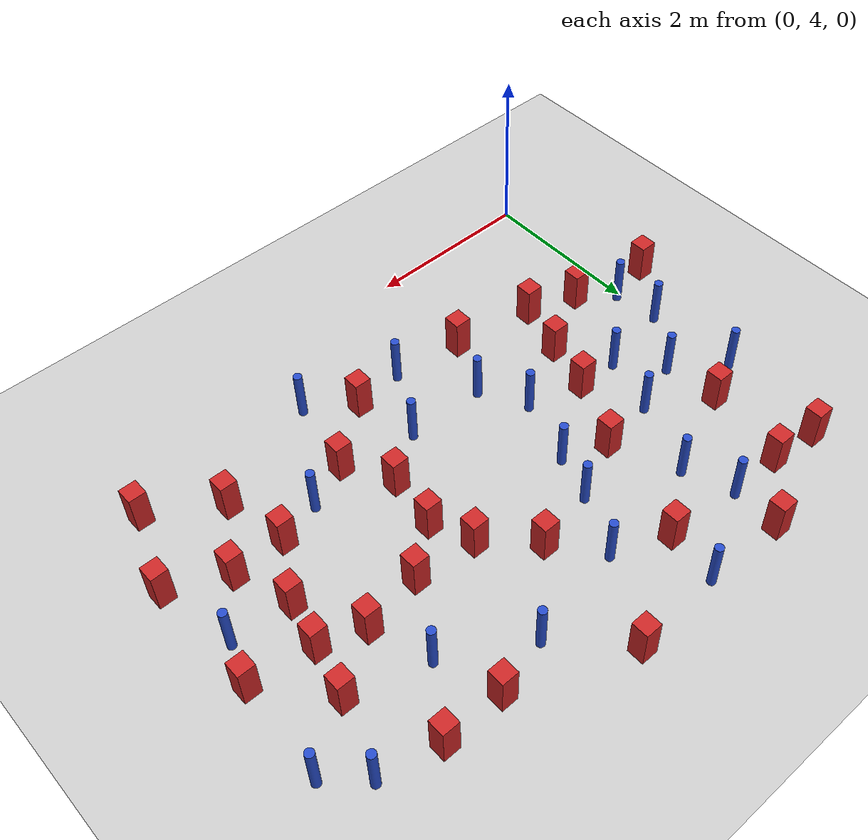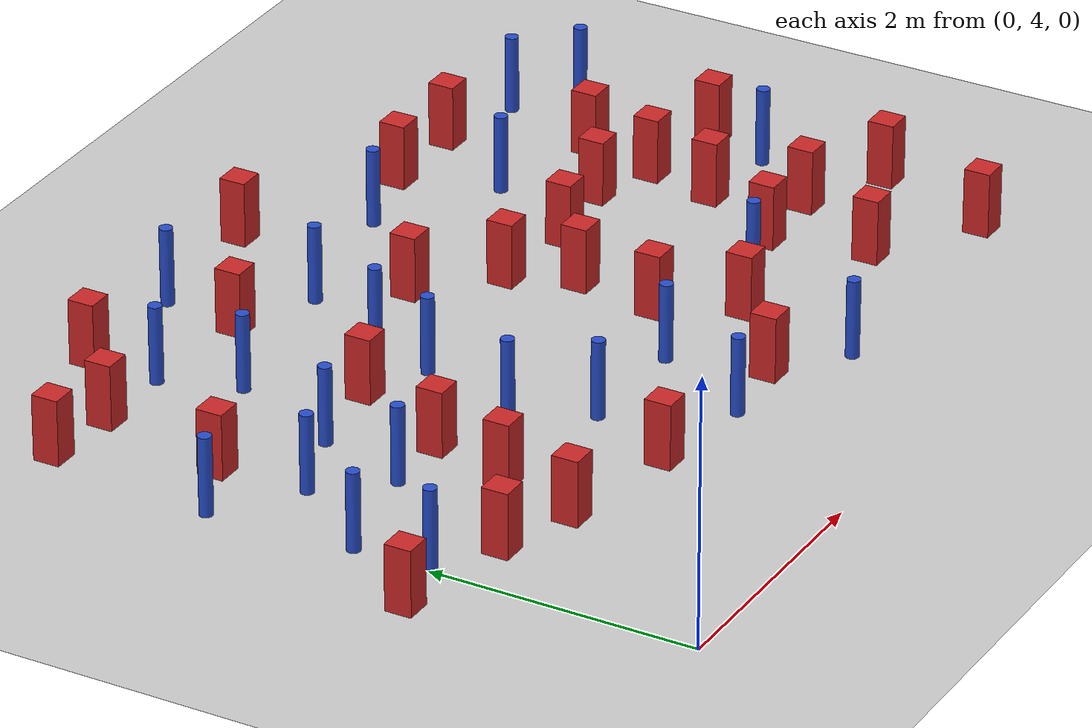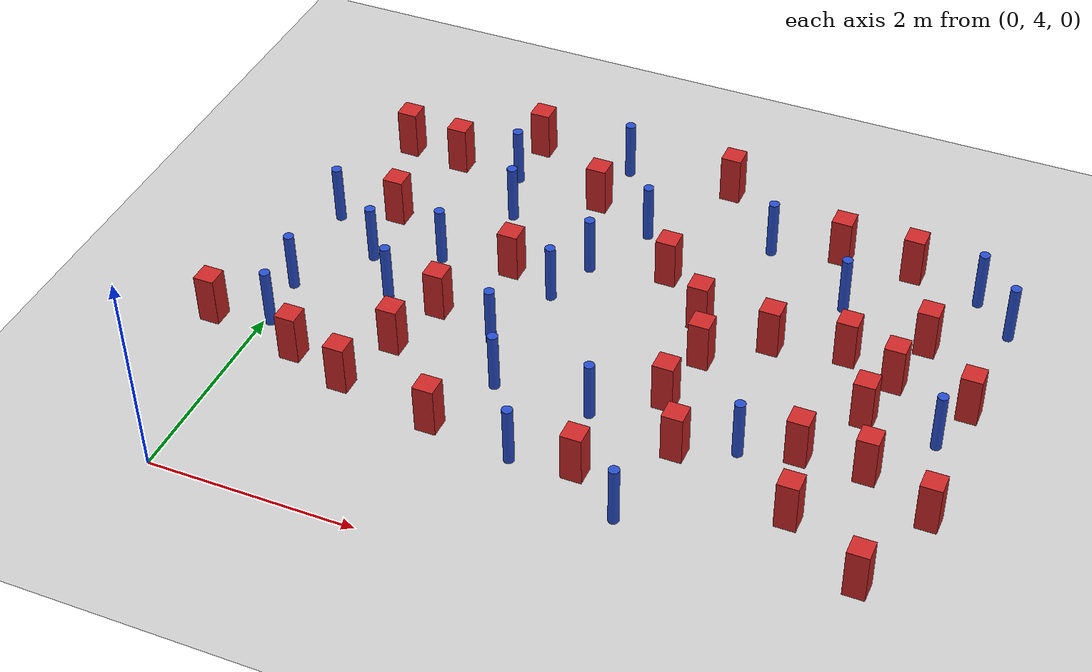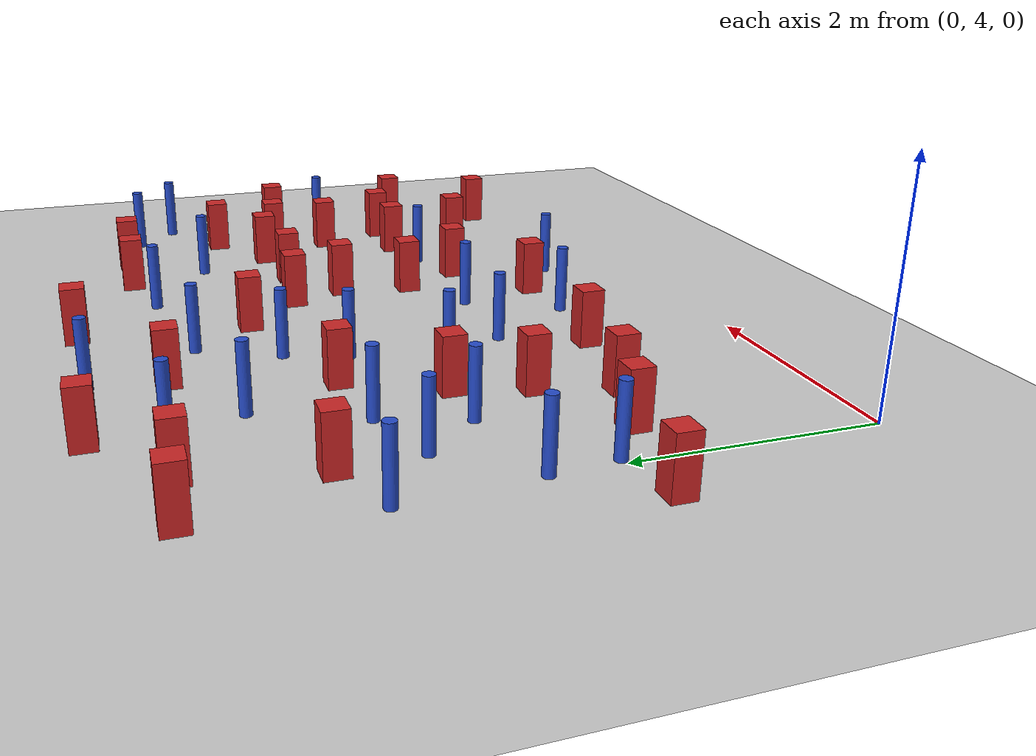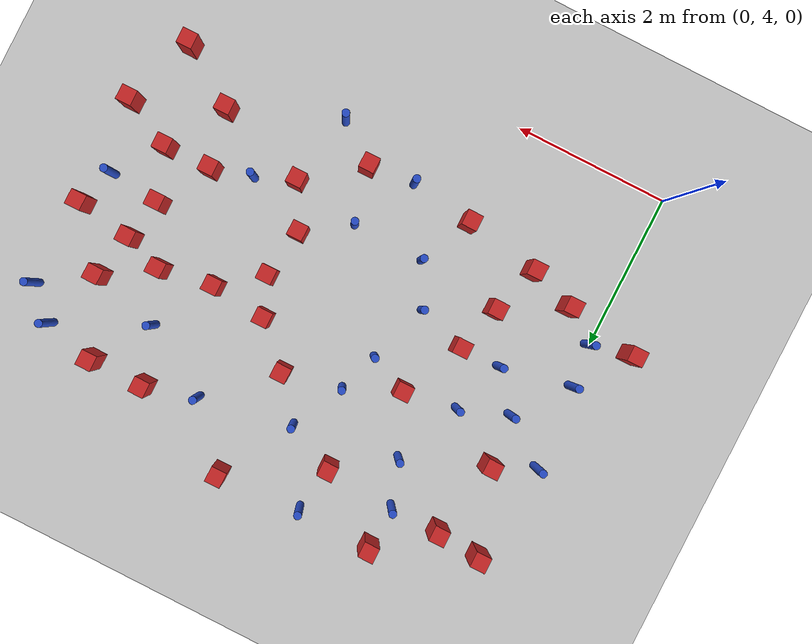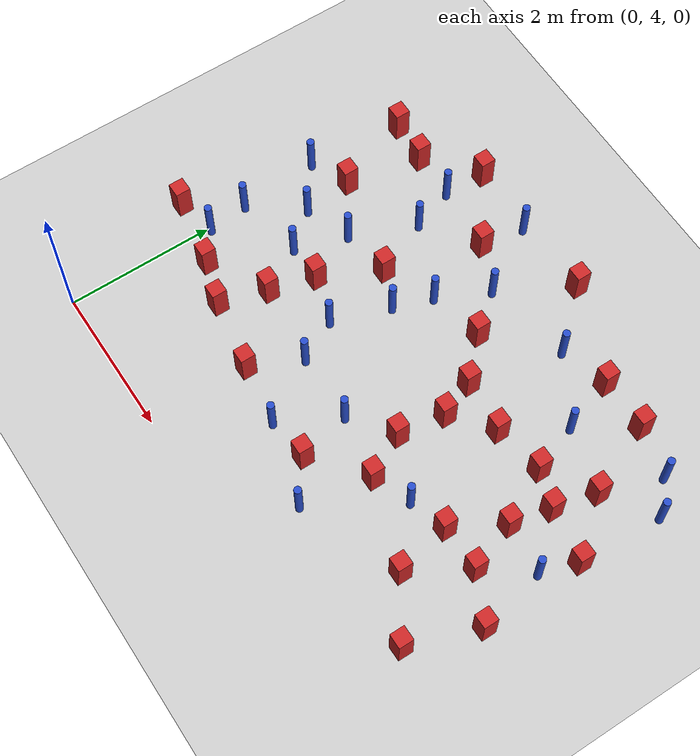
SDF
<sdf version="1.6">
 <world name="default">
  <model name="ground_plane">
   <static>1</static>
   <link name="link">
    <collision name="collision">
     <geometry><plane><normal>0 0 1</normal><size>100 100</size></plane></geometry>
     <surface><friction><ode><mu>100</mu><mu2>50</mu2></ode></friction></surface>
    </collision>
    <visual name="visual">
     <cast_shadows>0</cast_shadows>
     <geometry><plane><normal>0 0 1</normal><size>100 100</size></plane></geometry>
     <material>
      <ambient>1.0 1.0 1.0 1.0</ambient>
      <diffuse>0.8 0.8 0.8 1.0</diffuse>
      <specular>0.01 0.01 0.01 1.000000</specular>
     </material>
    </visual>
   </link>
  </model>
  <model name="pole_obstacle1">
   <static>true</static>
   <pose>2.85580955907 5.23067416467 -9.47619616065e-06 5.49618799738e-07 2.3631041406e-07 -1.55090534801e-07</pose>
   <link name="link">
    <pose>0 0 0.3 0 -0 0</pose>
    <inertial>
     <mass>1</mass>
     <inertia><ixx>0.145833</ixx><ixy>0</ixy><ixz>0</ixz><iyy>0.145833</iyy><iyz>0</iyz><izz>0.125</izz></inertia>
    </inertial>
    <collision name="collision">
     <geometry><cylinder><radius>0.05</radius><length>.6</length></cylinder></geometry>
    </collision>
    <visual name="visual">
     <geometry><cylinder><radius>0.05</radius><length>.6</length></cylinder></geometry>
     <material>
      <script><name>Gazebo/Blue</name><uri>file://media/materials/scripts/gazebo.material</uri></script>
     </material>
    </visual>
   </link>
  </model>
  <model name="square_post_obstacle0">
   <static>true</static>
   <pose>1.83028905246 7.55747029664 -6.11067671241e-07 -5.50515727128e-06 -8.79689657224e-07 2.37013304536e-05</pose>
   <link name="link">
    <pose>0 0 0.25 0 -0 0</pose>
    <inertial>
     <mass>100</mass>
     <inertia>
      <ixx>0.166667</ixx>
      <ixy>0</ixy>
      <ixz>0</ixz>
      <iyy>0.166667</iyy>
      <iyz>0</iyz>
      <izz>0.166667</izz>
     </inertia>
    </inertial>
    <collision name="collision"><geometry><box><size>.2 .2 .5</size></box></geometry></collision>
    <visual name="visual">
     <geometry><box><size>.2 .2 .5</size></box></geometry>
     <material>
      <script><name>Gazebo/Red</name><uri>file://media/materials/scripts/gazebo.material</uri></script>
     </material>
    </visual>
   </link>
  </model>
  <model name="square_post_obstacle8">
   <static>true</static>
   <pose>3.74884087487 7.5368950362 -6.11067671241e-07 -5.50515727128e-06 -8.79689657224e-07 2.37013304536e-05</pose>
   <link name="link">
    <pose>0 0 0.25 0 -0 0</pose>
    <inertial>
     <mass>100</mass>
     <inertia>
      <ixx>0.166667</ixx>
      <ixy>0</ixy>
      <ixz>0</ixz>
      <iyy>0.166667</iyy>
      <iyz>0</iyz>
      <izz>0.166667</izz>
     </inertia>
    </inertial>
    <collision name="collision"><geometry><box><size>.2 .2 .5</size></box></geometry></collision>
    <visual name="visual">
     <geometry><box><size>.2 .2 .5</size></box></geometry>
     <material>
      <script><name>Gazebo/Red</name><uri>file://media/materials/scripts/gazebo.material</uri></script>
     </material>
    </visual>
   </link>
  </model>
  <model name="square_post_obstacle16">
   <static>true</static>
   <pose>3.84544530139 6.41487011286 -6.11067671241e-07 -5.50515727128e-06 -8.79689657224e-07 2.37013304536e-05</pose>
   <link name="link">
    <pose>0 0 0.25 0 -0 0</pose>
    <inertial>
     <mass>100</mass>
     <inertia>
      <ixx>0.166667</ixx>
      <ixy>0</ixy>
      <ixz>0</ixz>
      <iyy>0.166667</iyy>
      <iyz>0</iyz>
      <izz>0.166667</izz>
     </inertia>
    </inertial>
    <collision name="collision"><geometry><box><size>.2 .2 .5</size></box></geometry></collision>
    <visual name="visual">
     <geometry><box><size>.2 .2 .5</size></box></geometry>
     <material>
      <script><name>Gazebo/Red</name><uri>file://media/materials/scripts/gazebo.material</uri></script>
     </material>
    </visual>
   </link>
  </model>
  <model name="square_post_obstacle22">
   <static>true</static>
   <pose>2.20849700786 8.8190496391 -6.11067671241e-07 -5.50515727128e-06 -8.79689657224e-07 2.37013304536e-05</pose>
   <link name="link">
    <pose>0 0 0.25 0 -0 0</pose>
    <inertial>
     <mass>100</mass>
     <inertia>
      <ixx>0.166667</ixx>
      <ixy>0</ixy>
      <ixz>0</ixz>
      <iyy>0.166667</iyy>
      <iyz>0</iyz>
      <izz>0.166667</izz>
     </inertia>
    </inertial>
    <collision name="collision"><geometry><box><size>.2 .2 .5</size></box></geometry></collision>
    <visual name="visual">
     <geometry><box><size>.2 .2 .5</size></box></geometry>
     <material>
      <script><name>Gazebo/Red</name><uri>file://media/materials/scripts/gazebo.material</uri></script>
     </material>
    </visual>
   </link>
  </model>
  <model name="square_post_obstacle27">
   <static>true</static>
   <pose>3.37162159482 9.488462957 -6.11067671241e-07 -5.50515727128e-06 -8.79689657224e-07 2.37013304536e-05</pose>
   <link name="link">
    <pose>0 0 0.25 0 -0 0</pose>
    <inertial>
     <mass>100</mass>
     <inertia>
      <ixx>0.166667</ixx>
      <ixy>0</ixy>
      <ixz>0</ixz>
      <iyy>0.166667</iyy>
      <iyz>0</iyz>
      <izz>0.166667</izz>
     </inertia>
    </inertial>
    <collision name="collision"><geometry><box><size>.2 .2 .5</size></box></geometry></collision>
    <visual name="visual">
     <geometry><box><size>.2 .2 .5</size></box></geometry>
     <material>
      <script><name>Gazebo/Red</name><uri>file://media/materials/scripts/gazebo.material</uri></script>
     </material>
    </visual>
   </link>
  </model>
  <model name="pole_obstacle45">
   <static>true</static>
   <pose>2.3482059789 6.03119400719 -9.47619616065e-06 5.49618799738e-07 2.3631041406e-07 -1.55090534801e-07</pose>
   <link name="link">
    <pose>0 0 0.3 0 -0 0</pose>
    <inertial>
     <mass>1</mass>
     <inertia><ixx>0.145833</ixx><ixy>0</ixy><ixz>0</ixz><iyy>0.145833</iyy><iyz>0</iyz><izz>0.125</izz></inertia>
    </inertial>
    <collision name="collision">
     <geometry><cylinder><radius>0.05</radius><length>.6</length></cylinder></geometry>
    </collision>
    <visual name="visual">
     <geometry><cylinder><radius>0.05</radius><length>.6</length></cylinder></geometry>
     <material>
      <script><name>Gazebo/Blue</name><uri>file://media/materials/scripts/gazebo.material</uri></script>
     </material>
    </visual>
   </link>
  </model>
  <model name="pole_obstacle52">
   <static>true</static>
   <pose>0.515018091593 7.229874019 -9.47619616065e-06 5.49618799737e-07 2.36310414064e-07 -1.55090534796e-07</pose>
   <link name="link">
    <pose>0 0 0.3 0 -0 0</pose>
    <inertial>
     <mass>1</mass>
     <inertia><ixx>0.145833</ixx><ixy>0</ixy><ixz>0</ixz><iyy>0.145833</iyy><iyz>0</iyz><izz>0.125</izz></inertia>
    </inertial>
    <collision name="collision">
     <geometry><cylinder><radius>0.05</radius><length>.6</length></cylinder></geometry>
    </collision>
    <visual name="visual">
     <geometry><cylinder><radius>0.05</radius><length>.6</length></cylinder></geometry>
     <material>
      <script><name>Gazebo/Blue</name><uri>file://media/materials/scripts/gazebo.material</uri></script>
     </material>
    </visual>
   </link>
  </model>
  <model name="square_post_obstacle43">
   <static>true</static>
   <pose>5.53662683027 6.87199798454 -6.11067671241e-07 -5.50515727128e-06 -8.79689657224e-07 2.37013304536e-05</pose>
   <link name="link">
    <pose>0 0 0.25 0 -0 0</pose>
    <inertial>
     <mass>100</mass>
     <inertia>
      <ixx>0.166667</ixx>
      <ixy>0</ixy>
      <ixz>0</ixz>
      <iyy>0.166667</iyy>
      <iyz>0</iyz>
      <izz>0.166667</izz>
     </inertia>
    </inertial>
    <collision name="collision"><geometry><box><size>.2 .2 .5</size></box></geometry></collision>
    <visual name="visual">
     <geometry><box><size>.2 .2 .5</size></box></geometry>
     <material>
      <script><name>Gazebo/Red</name><uri>file://media/materials/scripts/gazebo.material</uri></script>
     </material>
    </visual>
   </link>
  </model>
  <model name="pole_obstacle57">
   <static>true</static>
   <pose>6.06471203291 8.79837582452 -9.47619616065e-06 5.49618799737e-07 2.36310414065e-07 -1.55090534796e-07</pose>
   <link name="link">
    <pose>0 0 0.3 0 -0 0</pose>
    <inertial>
     <mass>1</mass>
     <inertia><ixx>0.145833</ixx><ixy>0</ixy><ixz>0</ixz><iyy>0.145833</iyy><iyz>0</iyz><izz>0.125</izz></inertia>
    </inertial>
    <collision name="collision">
     <geometry><cylinder><radius>0.05</radius><length>.6</length></cylinder></geometry>
    </collision>
    <visual name="visual">
     <geometry><cylinder><radius>0.05</radius><length>.6</length></cylinder></geometry>
     <material>
      <script><name>Gazebo/Blue</name><uri>file://media/materials/scripts/gazebo.material</uri></script>
     </material>
    </visual>
   </link>
  </model>
  <model name="pole_obstacle58">
   <static>true</static>
   <pose>2.50445414795 7.87052021361 -9.47619616065e-06 5.49618799738e-07 2.3631041406e-07 -1.55090534801e-07</pose>
   <link name="link">
    <pose>0 0 0.3 0 -0 0</pose>
    <inertial>
     <mass>1</mass>
     <inertia><ixx>0.145833</ixx><ixy>0</ixy><ixz>0</ixz><iyy>0.145833</iyy><iyz>0</iyz><izz>0.125</izz></inertia>
    </inertial>
    <collision name="collision">
     <geometry><cylinder><radius>0.05</radius><length>.6</length></cylinder></geometry>
    </collision>
    <visual name="visual">
     <geometry><cylinder><radius>0.05</radius><length>.6</length></cylinder></geometry>
     <material>
      <script><name>Gazebo/Blue</name><uri>file://media/materials/scripts/gazebo.material</uri></script>
     </material>
    </visual>
   </link>
  </model>
  <model name="pole_obstacle65">
   <static>true</static>
   <pose>-0.069797142201 7.66023415834 -9.47619616065e-06 5.49618799738e-07 2.36310414065e-07 -1.55090534798e-07</pose>
   <link name="link">
    <pose>0 0 0.3 0 -0 0</pose>
    <inertial>
     <mass>1</mass>
     <inertia><ixx>0.145833</ixx><ixy>0</ixy><ixz>0</ixz><iyy>0.145833</iyy><iyz>0</iyz><izz>0.125</izz></inertia>
    </inertial>
    <collision name="collision">
     <geometry><cylinder><radius>0.05</radius><length>.6</length></cylinder></geometry>
    </collision>
    <visual name="visual">
     <geometry><cylinder><radius>0.05</radius><length>.6</length></cylinder></geometry>
     <material>
      <script><name>Gazebo/Blue</name><uri>file://media/materials/scripts/gazebo.material</uri></script>
     </material>
    </visual>
   </link>
  </model>
  <model name="pole_obstacle66">
   <static>true</static>
   <pose>4.65085285205 6.06011101592 -9.47619616065e-06 5.49618799737e-07 2.36310414037e-07 -1.55090534814e-07</pose>
   <link name="link">
    <pose>0 0 0.3 0 -0 0</pose>
    <inertial>
     <mass>1</mass>
     <inertia><ixx>0.145833</ixx><ixy>0</ixy><ixz>0</ixz><iyy>0.145833</iyy><iyz>0</iyz><izz>0.125</izz></inertia>
    </inertial>
    <collision name="collision">
     <geometry><cylinder><radius>0.05</radius><length>.6</length></cylinder></geometry>
    </collision>
    <visual name="visual">
     <geometry><cylinder><radius>0.05</radius><length>.6</length></cylinder></geometry>
     <material>
      <script><name>Gazebo/Blue</name><uri>file://media/materials/scripts/gazebo.material</uri></script>
     </material>
    </visual>
   </link>
  </model>
  <model name="square_post_obstacle50">
   <static>true</static>
   <pose>5.38782595455 8.95163446814 -6.11067671241e-07 -5.50515727128e-06 -8.79689657224e-07 2.37013304536e-05</pose>
   <link name="link">
    <pose>0 0 0.25 0 -0 0</pose>
    <inertial>
     <mass>100</mass>
     <inertia>
      <ixx>0.166667</ixx>
      <ixy>0</ixy>
      <ixz>0</ixz>
      <iyy>0.166667</iyy>
      <iyz>0</iyz>
      <izz>0.166667</izz>
     </inertia>
    </inertial>
    <collision name="collision"><geometry><box><size>.2 .2 .5</size></box></geometry></collision>
    <visual name="visual">
     <geometry><box><size>.2 .2 .5</size></box></geometry>
     <material>
      <script><name>Gazebo/Red</name><uri>file://media/materials/scripts/gazebo.material</uri></script>
     </material>
    </visual>
   </link>
  </model>
  <model name="square_post_obstacle51">
   <static>true</static>
   <pose>0.475971260374 5.71916695548 -6.11067671241e-07 -5.50515727128e-06 -8.79689657224e-07 2.37013304536e-05</pose>
   <link name="link">
    <pose>0 0 0.25 0 -0 0</pose>
    <inertial>
     <mass>100</mass>
     <inertia>
      <ixx>0.166667</ixx>
      <ixy>0</ixy>
      <ixz>0</ixz>
      <iyy>0.166667</iyy>
      <iyz>0</iyz>
      <izz>0.166667</izz>
     </inertia>
    </inertial>
    <collision name="collision"><geometry><box><size>.2 .2 .5</size></box></geometry></collision>
    <visual name="visual">
     <geometry><box><size>.2 .2 .5</size></box></geometry>
     <material>
      <script><name>Gazebo/Red</name><uri>file://media/materials/scripts/gazebo.material</uri></script>
     </material>
    </visual>
   </link>
  </model>
  <model name="square_post_obstacle57">
   <static>true</static>
   <pose>1.270073538 6.15981220627 -6.11067671241e-07 -5.50515727128e-06 -8.79689657224e-07 2.37013304536e-05</pose>
   <link name="link">
    <pose>0 0 0.25 0 -0 0</pose>
    <inertial>
     <mass>100</mass>
     <inertia>
      <ixx>0.166667</ixx>
      <ixy>0</ixy>
      <ixz>0</ixz>
      <iyy>0.166667</iyy>
      <iyz>0</iyz>
      <izz>0.166667</izz>
     </inertia>
    </inertial>
    <collision name="collision"><geometry><box><size>.2 .2 .5</size></box></geometry></collision>
    <visual name="visual">
     <geometry><box><size>.2 .2 .5</size></box></geometry>
     <material>
      <script><name>Gazebo/Red</name><uri>file://media/materials/scripts/gazebo.material</uri></script>
     </material>
    </visual>
   </link>
  </model>
  <model name="pole_obstacle70">
   <static>true</static>
   <pose>2.83326348503 8.54888069848 -9.4761961606e-06 5.49618799729e-07 2.36310414e-07 -1.55090534824e-07</pose>
   <link name="link">
    <pose>0 0 0.3 0 -0 0</pose>
    <inertial>
     <mass>1</mass>
     <inertia><ixx>0.145833</ixx><ixy>0</ixy><ixz>0</ixz><iyy>0.145833</iyy><iyz>0</iyz><izz>0.125</izz></inertia>
    </inertial>
    <collision name="collision">
     <geometry><cylinder><radius>0.05</radius><length>.6</length></cylinder></geometry>
    </collision>
    <visual name="visual">
     <geometry><cylinder><radius>0.05</radius><length>.6</length></cylinder></geometry>
     <material>
      <script><name>Gazebo/Blue</name><uri>file://media/materials/scripts/gazebo.material</uri></script>
     </material>
    </visual>
   </link>
  </model>
  <model name="pole_obstacle72">
   <static>true</static>
   <pose>1.29949552633 8.89652993735 -9.47619616065e-06 5.49618799737e-07 2.36310414046e-07 -1.55090534809e-07</pose>
   <link name="link">
    <pose>0 0 0.3 0 -0 0</pose>
    <inertial>
     <mass>1</mass>
     <inertia><ixx>0.145833</ixx><ixy>0</ixy><ixz>0</ixz><iyy>0.145833</iyy><iyz>0</iyz><izz>0.125</izz></inertia>
    </inertial>
    <collision name="collision">
     <geometry><cylinder><radius>0.05</radius><length>.6</length></cylinder></geometry>
    </collision>
    <visual name="visual">
     <geometry><cylinder><radius>0.05</radius><length>.6</length></cylinder></geometry>
     <material>
      <script><name>Gazebo/Blue</name><uri>file://media/materials/scripts/gazebo.material</uri></script>
     </material>
    </visual>
   </link>
  </model>
  <model name="pole_obstacle91">
   <static>true</static>
   <pose>4.02550675556 8.77714383015 -9.47619616065e-06 5.49618799737e-07 2.36310414062e-07 -1.55090534799e-07</pose>
   <link name="link">
    <pose>0 0 0.3 0 -0 0</pose>
    <inertial>
     <mass>1</mass>
     <inertia><ixx>0.145833</ixx><ixy>0</ixy><ixz>0</ixz><iyy>0.145833</iyy><iyz>0</iyz><izz>0.125</izz></inertia>
    </inertial>
    <collision name="collision">
     <geometry><cylinder><radius>0.05</radius><length>.6</length></cylinder></geometry>
    </collision>
    <visual name="visual">
     <geometry><cylinder><radius>0.05</radius><length>.6</length></cylinder></geometry>
     <material>
      <script><name>Gazebo/Blue</name><uri>file://media/materials/scripts/gazebo.material</uri></script>
     </material>
    </visual>
   </link>
  </model>
  <model name="pole_obstacle92">
   <static>true</static>
   <pose>1.13587199653 7.45641889118 -9.47619616065e-06 5.49618799737e-07 2.36310414061e-07 -1.550905348e-07</pose>
   <link name="link">
    <pose>0 0 0.3 0 -0 0</pose>
    <inertial>
     <mass>1</mass>
     <inertia><ixx>0.145833</ixx><ixy>0</ixy><ixz>0</ixz><iyy>0.145833</iyy><iyz>0</iyz><izz>0.125</izz></inertia>
    </inertial>
    <collision name="collision">
     <geometry><cylinder><radius>0.05</radius><length>.6</length></cylinder></geometry>
    </collision>
    <visual name="visual">
     <geometry><cylinder><radius>0.05</radius><length>.6</length></cylinder></geometry>
     <material>
      <script><name>Gazebo/Blue</name><uri>file://media/materials/scripts/gazebo.material</uri></script>
     </material>
    </visual>
   </link>
  </model>
  <model name="square_post_obstacle86">
   <static>true</static>
   <pose>0.662292389797 8.89794215684 -6.11067671241e-07 -5.50515727128e-06 -8.79689657224e-07 2.37013304536e-05</pose>
   <link name="link">
    <pose>0 0 0.25 0 -0 0</pose>
    <inertial>
     <mass>100</mass>
     <inertia>
      <ixx>0.166667</ixx>
      <ixy>0</ixy>
      <ixz>0</ixz>
      <iyy>0.166667</iyy>
      <iyz>0</iyz>
      <izz>0.166667</izz>
     </inertia>
    </inertial>
    <collision name="collision"><geometry><box><size>.2 .2 .5</size></box></geometry></collision>
    <visual name="visual">
     <geometry><box><size>.2 .2 .5</size></box></geometry>
     <material>
      <script><name>Gazebo/Red</name><uri>file://media/materials/scripts/gazebo.material</uri></script>
     </material>
    </visual>
   </link>
  </model>
  <model name="pole_obstacle95">
   <static>true</static>
   <pose>0.912615577414 6.76168383278 -9.47619616065e-06 5.49618799737e-07 2.36310414065e-07 -1.55090534796e-07</pose>
   <link name="link">
    <pose>0 0 0.3 0 -0 0</pose>
    <inertial>
     <mass>1</mass>
     <inertia><ixx>0.145833</ixx><ixy>0</ixy><ixz>0</ixz><iyy>0.145833</iyy><iyz>0</iyz><izz>0.125</izz></inertia>
    </inertial>
    <collision name="collision">
     <geometry><cylinder><radius>0.05</radius><length>.6</length></cylinder></geometry>
    </collision>
    <visual name="visual">
     <geometry><cylinder><radius>0.05</radius><length>.6</length></cylinder></geometry>
     <material>
      <script><name>Gazebo/Blue</name><uri>file://media/materials/scripts/gazebo.material</uri></script>
     </material>
    </visual>
   </link>
  </model>
  <model name="square_post_obstacle95">
   <static>true</static>
   <pose>0.0823641384119 8.95176169801 -6.11067671241e-07 -5.50515727128e-06 -8.79689657224e-07 2.37013304536e-05</pose>
   <link name="link">
    <pose>0 0 0.25 0 -0 0</pose>
    <inertial>
     <mass>100</mass>
     <inertia>
      <ixx>0.166667</ixx>
      <ixy>0</ixy>
      <ixz>0</ixz>
      <iyy>0.166667</iyy>
      <iyz>0</iyz>
      <izz>0.166667</izz>
     </inertia>
    </inertial>
    <collision name="collision"><geometry><box><size>.2 .2 .5</size></box></geometry></collision>
    <visual name="visual">
     <geometry><box><size>.2 .2 .5</size></box></geometry>
     <material>
      <script><name>Gazebo/Red</name><uri>file://media/materials/scripts/gazebo.material</uri></script>
     </material>
    </visual>
   </link>
  </model>
  <model name="pole_obstacle103">
   <static>true</static>
   <pose>0.00601956938306 6.57209851133 -9.47619616065e-06 5.49618799737e-07 2.36310414062e-07 -1.550905348e-07</pose>
   <link name="link">
    <pose>0 0 0.3 0 -0 0</pose>
    <inertial>
     <mass>1</mass>
     <inertia><ixx>0.145833</ixx><ixy>0</ixy><ixz>0</ixz><iyy>0.145833</iyy><iyz>0</iyz><izz>0.125</izz></inertia>
    </inertial>
    <collision name="collision">
     <geometry><cylinder><radius>0.05</radius><length>.6</length></cylinder></geometry>
    </collision>
    <visual name="visual">
     <geometry><cylinder><radius>0.05</radius><length>.6</length></cylinder></geometry>
     <material>
      <script><name>Gazebo/Blue</name><uri>file://media/materials/scripts/gazebo.material</uri></script>
     </material>
    </visual>
   </link>
  </model>
  <model name="pole_obstacle105">
   <static>true</static>
   <pose>3.27946936242 6.01267195641 -9.47619616065e-06 5.49618799738e-07 2.3631041406e-07 -1.55090534801e-07</pose>
   <link name="link">
    <pose>0 0 0.3 0 -0 0</pose>
    <inertial>
     <mass>1</mass>
     <inertia><ixx>0.145833</ixx><ixy>0</ixy><ixz>0</ixz><iyy>0.145833</iyy><iyz>0</iyz><izz>0.125</izz></inertia>
    </inertial>
    <collision name="collision">
     <geometry><cylinder><radius>0.05</radius><length>.6</length></cylinder></geometry>
    </collision>
    <visual name="visual">
     <geometry><cylinder><radius>0.05</radius><length>.6</length></cylinder></geometry>
     <material>
      <script><name>Gazebo/Blue</name><uri>file://media/materials/scripts/gazebo.material</uri></script>
     </material>
    </visual>
   </link>
  </model>
  <model name="pole_obstacle106">
   <static>true</static>
   <pose>0.0633143659111 6.02285485583 -9.47619616065e-06 5.49618799737e-07 2.36310414061e-07 -1.550905348e-07</pose>
   <link name="link">
    <pose>0 0 0.3 0 -0 0</pose>
    <inertial>
     <mass>1</mass>
     <inertia><ixx>0.145833</ixx><ixy>0</ixy><ixz>0</ixz><iyy>0.145833</iyy><iyz>0</iyz><izz>0.125</izz></inertia>
    </inertial>
    <collision name="collision">
     <geometry><cylinder><radius>0.05</radius><length>.6</length></cylinder></geometry>
    </collision>
    <visual name="visual">
     <geometry><cylinder><radius>0.05</radius><length>.6</length></cylinder></geometry>
     <material>
      <script><name>Gazebo/Blue</name><uri>file://media/materials/scripts/gazebo.material</uri></script>
     </material>
    </visual>
   </link>
  </model>
  <model name="pole_obstacle107">
   <static>true</static>
   <pose>6.21603808845 6.8076604136 -9.47619616065e-06 5.49618799737e-07 2.36310414037e-07 -1.55090534814e-07</pose>
   <link name="link">
    <pose>0 0 0.3 0 -0 0</pose>
    <inertial>
     <mass>1</mass>
     <inertia><ixx>0.145833</ixx><ixy>0</ixy><ixz>0</ixz><iyy>0.145833</iyy><iyz>0</iyz><izz>0.125</izz></inertia>
    </inertial>
    <collision name="collision">
     <geometry><cylinder><radius>0.05</radius><length>.6</length></cylinder></geometry>
    </collision>
    <visual name="visual">
     <geometry><cylinder><radius>0.05</radius><length>.6</length></cylinder></geometry>
     <material>
      <script><name>Gazebo/Blue</name><uri>file://media/materials/scripts/gazebo.material</uri></script>
     </material>
    </visual>
   </link>
  </model>
  <model name="square_post_obstacle103">
   <static>true</static>
   <pose>6.4030038879 5.90497335156 -6.11067671241e-07 -5.50515727128e-06 -8.79689657224e-07 2.37013304536e-05</pose>
   <link name="link">
    <pose>0 0 0.25 0 -0 0</pose>
    <inertial>
     <mass>100</mass>
     <inertia>
      <ixx>0.166667</ixx>
      <ixy>0</ixy>
      <ixz>0</ixz>
      <iyy>0.166667</iyy>
      <iyz>0</iyz>
      <izz>0.166667</izz>
     </inertia>
    </inertial>
    <collision name="collision"><geometry><box><size>.2 .2 .5</size></box></geometry></collision>
    <visual name="visual">
     <geometry><box><size>.2 .2 .5</size></box></geometry>
     <material>
      <script><name>Gazebo/Red</name><uri>file://media/materials/scripts/gazebo.material</uri></script>
     </material>
    </visual>
   </link>
  </model>
  <model name="square_post_obstacle106">
   <static>true</static>
   <pose>5.79100281252 7.993634885 -6.11067671241e-07 -5.50515727128e-06 -8.79689657224e-07 2.37013304536e-05</pose>
   <link name="link">
    <pose>0 0 0.25 0 -0 0</pose>
    <inertial>
     <mass>100</mass>
     <inertia>
      <ixx>0.166667</ixx>
      <ixy>0</ixy>
      <ixz>0</ixz>
      <iyy>0.166667</iyy>
      <iyz>0</iyz>
      <izz>0.166667</izz>
     </inertia>
    </inertial>
    <collision name="collision"><geometry><box><size>.2 .2 .5</size></box></geometry></collision>
    <visual name="visual">
     <geometry><box><size>.2 .2 .5</size></box></geometry>
     <material>
      <script><name>Gazebo/Red</name><uri>file://media/materials/scripts/gazebo.material</uri></script>
     </material>
    </visual>
   </link>
  </model>
  <model name="square_post_obstacle110">
   <static>true</static>
   <pose>4.14677289548 5.85699659064 -6.11067671241e-07 -5.50515727128e-06 -8.79689657224e-07 2.37013304536e-05</pose>
   <link name="link">
    <pose>0 0 0.25 0 -0 0</pose>
    <inertial>
     <mass>100</mass>
     <inertia>
      <ixx>0.166667</ixx>
      <ixy>0</ixy>
      <ixz>0</ixz>
      <iyy>0.166667</iyy>
      <iyz>0</iyz>
      <izz>0.166667</izz>
     </inertia>
    </inertial>
    <collision name="collision"><geometry><box><size>.2 .2 .5</size></box></geometry></collision>
    <visual name="visual">
     <geometry><box><size>.2 .2 .5</size></box></geometry>
     <material>
      <script><name>Gazebo/Red</name><uri>file://media/materials/scripts/gazebo.material</uri></script>
     </material>
    </visual>
   </link>
  </model>
  <model name="pole_obstacle113">
   <static>true</static>
   <pose>2.29466223772 9.4259273865 -9.4761961606e-06 5.49618799729e-07 2.36310414e-07 -1.55090534824e-07</pose>
   <link name="link">
    <pose>0 0 0.3 0 -0 0</pose>
    <inertial>
     <mass>1</mass>
     <inertia><ixx>0.145833</ixx><ixy>0</ixy><ixz>0</ixz><iyy>0.145833</iyy><iyz>0</iyz><izz>0.125</izz></inertia>
    </inertial>
    <collision name="collision">
     <geometry><cylinder><radius>0.05</radius><length>.6</length></cylinder></geometry>
    </collision>
    <visual name="visual">
     <geometry><cylinder><radius>0.05</radius><length>.6</length></cylinder></geometry>
     <material>
      <script><name>Gazebo/Blue</name><uri>file://media/materials/scripts/gazebo.material</uri></script>
     </material>
    </visual>
   </link>
  </model>
  <model name="square_post_obstacle114">
   <static>true</static>
   <pose>2.03566413805 5.35289319383 -6.11067671241e-07 -5.50515727128e-06 -8.79689657224e-07 2.37013304536e-05</pose>
   <link name="link">
    <pose>0 0 0.25 0 -0 0</pose>
    <inertial>
     <mass>100</mass>
     <inertia>
      <ixx>0.166667</ixx>
      <ixy>0</ixy>
      <ixz>0</ixz>
      <iyy>0.166667</iyy>
      <iyz>0</iyz>
      <izz>0.166667</izz>
     </inertia>
    </inertial>
    <collision name="collision"><geometry><box><size>.2 .2 .5</size></box></geometry></collision>
    <visual name="visual">
     <geometry><box><size>.2 .2 .5</size></box></geometry>
     <material>
      <script><name>Gazebo/Red</name><uri>file://media/materials/scripts/gazebo.material</uri></script>
     </material>
    </visual>
   </link>
  </model>
  <model name="square_post_obstacle119">
   <static>true</static>
   <pose>5.76489861948 6.22090672362 -6.11067671241e-07 -5.50515727128e-06 -8.79689657224e-07 2.37013304536e-05</pose>
   <link name="link">
    <pose>0 0 0.25 0 -0 0</pose>
    <inertial>
     <mass>100</mass>
     <inertia>
      <ixx>0.166667</ixx>
      <ixy>0</ixy>
      <ixz>0</ixz>
      <iyy>0.166667</iyy>
      <iyz>0</iyz>
      <izz>0.166667</izz>
     </inertia>
    </inertial>
    <collision name="collision"><geometry><box><size>.2 .2 .5</size></box></geometry></collision>
    <visual name="visual">
     <geometry><box><size>.2 .2 .5</size></box></geometry>
     <material>
      <script><name>Gazebo/Red</name><uri>file://media/materials/scripts/gazebo.material</uri></script>
     </material>
    </visual>
   </link>
  </model>
  <model name="square_post_obstacle121">
   <static>true</static>
   <pose>5.31257544029 5.46941878328 -6.11067671241e-07 -5.50515727128e-06 -8.79689657224e-07 2.37013304536e-05</pose>
   <link name="link">
    <pose>0 0 0.25 0 -0 0</pose>
    <inertial>
     <mass>100</mass>
     <inertia>
      <ixx>0.166667</ixx>
      <ixy>0</ixy>
      <ixz>0</ixz>
      <iyy>0.166667</iyy>
      <iyz>0</iyz>
      <izz>0.166667</izz>
     </inertia>
    </inertial>
    <collision name="collision"><geometry><box><size>.2 .2 .5</size></box></geometry></collision>
    <visual name="visual">
     <geometry><box><size>.2 .2 .5</size></box></geometry>
     <material>
      <script><name>Gazebo/Red</name><uri>file://media/materials/scripts/gazebo.material</uri></script>
     </material>
    </visual>
   </link>
  </model>
  <model name="square_post_obstacle123">
   <static>true</static>
   <pose>3.44747856314 5.30113020797 -6.11067671241e-07 -5.50515727128e-06 -8.79689657224e-07 2.37013304536e-05</pose>
   <link name="link">
    <pose>0 0 0.25 0 -0 0</pose>
    <inertial>
     <mass>100</mass>
     <inertia>
      <ixx>0.166667</ixx>
      <ixy>0</ixy>
      <ixz>0</ixz>
      <iyy>0.166667</iyy>
      <iyz>0</iyz>
      <izz>0.166667</izz>
     </inertia>
    </inertial>
    <collision name="collision"><geometry><box><size>.2 .2 .5</size></box></geometry></collision>
    <visual name="visual">
     <geometry><box><size>.2 .2 .5</size></box></geometry>
     <material>
      <script><name>Gazebo/Red</name><uri>file://media/materials/scripts/gazebo.material</uri></script>
     </material>
    </visual>
   </link>
  </model>
  <model name="square_post_obstacle126">
   <static>true</static>
   <pose>1.32919012169 9.45756232961 -6.11067671241e-07 -5.50515727128e-06 -8.79689657224e-07 2.37013304536e-05</pose>
   <link name="link">
    <pose>0 0 0.25 0 -0 0</pose>
    <inertial>
     <mass>100</mass>
     <inertia>
      <ixx>0.166667</ixx>
      <ixy>0</ixy>
      <ixz>0</ixz>
      <iyy>0.166667</iyy>
      <iyz>0</iyz>
      <izz>0.166667</izz>
     </inertia>
    </inertial>
    <collision name="collision"><geometry><box><size>.2 .2 .5</size></box></geometry></collision>
    <visual name="visual">
     <geometry><box><size>.2 .2 .5</size></box></geometry>
     <material>
      <script><name>Gazebo/Red</name><uri>file://media/materials/scripts/gazebo.material</uri></script>
     </material>
    </visual>
   </link>
  </model>
  <model name="square_post_obstacle129">
   <static>true</static>
   <pose>1.43832163277 6.76761638438 -6.11067671241e-07 -5.50515727128e-06 -8.79689657224e-07 2.37013304536e-05</pose>
   <link name="link">
    <pose>0 0 0.25 0 -0 0</pose>
    <inertial>
     <mass>100</mass>
     <inertia>
      <ixx>0.166667</ixx>
      <ixy>0</ixy>
      <ixz>0</ixz>
      <iyy>0.166667</iyy>
      <iyz>0</iyz>
      <izz>0.166667</izz>
     </inertia>
    </inertial>
    <collision name="collision"><geometry><box><size>.2 .2 .5</size></box></geometry></collision>
    <visual name="visual">
     <geometry><box><size>.2 .2 .5</size></box></geometry>
     <material>
      <script><name>Gazebo/Red</name><uri>file://media/materials/scripts/gazebo.material</uri></script>
     </material>
    </visual>
   </link>
  </model>
  <model name="square_post_obstacle134">
   <static>true</static>
   <pose>6.06680393245 4.97147537675 -6.11067671241e-07 -5.50515727128e-06 -8.79689657224e-07 2.37013304536e-05</pose>
   <link name="link">
    <pose>0 0 0.25 0 -0 0</pose>
    <inertial>
     <mass>100</mass>
     <inertia>
      <ixx>0.166667</ixx>
      <ixy>0</ixy>
      <ixz>0</ixz>
      <iyy>0.166667</iyy>
      <iyz>0</iyz>
      <izz>0.166667</izz>
     </inertia>
    </inertial>
    <collision name="collision"><geometry><box><size>.2 .2 .5</size></box></geometry></collision>
    <visual name="visual">
     <geometry><box><size>.2 .2 .5</size></box></geometry>
     <material>
      <script><name>Gazebo/Red</name><uri>file://media/materials/scripts/gazebo.material</uri></script>
     </material>
    </visual>
   </link>
  </model>
  <model name="square_post_obstacle135">
   <static>true</static>
   <pose>6.37445238583 7.29612828535 -6.11067671241e-07 -5.50515727128e-06 -8.79689657224e-07 2.37013304536e-05</pose>
   <link name="link">
    <pose>0 0 0.25 0 -0 0</pose>
    <inertial>
     <mass>100</mass>
     <inertia>
      <ixx>0.166667</ixx>
      <ixy>0</ixy>
      <ixz>0</ixz>
      <iyy>0.166667</iyy>
      <iyz>0</iyz>
      <izz>0.166667</izz>
     </inertia>
    </inertial>
    <collision name="collision"><geometry><box><size>.2 .2 .5</size></box></geometry></collision>
    <visual name="visual">
     <geometry><box><size>.2 .2 .5</size></box></geometry>
     <material>
      <script><name>Gazebo/Red</name><uri>file://media/materials/scripts/gazebo.material</uri></script>
     </material>
    </visual>
   </link>
  </model>
  <model name="square_post_obstacle146">
   <static>true</static>
   <pose>3.24774305563 8.02758662707 -6.11067671241e-07 -5.50515727128e-06 -8.79689657224e-07 2.37013304536e-05</pose>
   <link name="link">
    <pose>0 0 0.25 0 -0 0</pose>
    <inertial>
     <mass>100</mass>
     <inertia>
      <ixx>0.166667</ixx>
      <ixy>0</ixy>
      <ixz>0</ixz>
      <iyy>0.166667</iyy>
      <iyz>0</iyz>
      <izz>0.166667</izz>
     </inertia>
    </inertial>
    <collision name="collision"><geometry><box><size>.2 .2 .5</size></box></geometry></collision>
    <visual name="visual">
     <geometry><box><size>.2 .2 .5</size></box></geometry>
     <material>
      <script><name>Gazebo/Red</name><uri>file://media/materials/scripts/gazebo.material</uri></script>
     </material>
    </visual>
   </link>
  </model>
  <model name="pole_obstacle154">
   <static>true</static>
   <pose>6.44669878986 8.43821555677 -9.47619616065e-06 5.49618799737e-07 2.36310414065e-07 -1.55090534796e-07</pose>
   <link name="link">
    <pose>0 0 0.3 0 -0 0</pose>
    <inertial>
     <mass>1</mass>
     <inertia><ixx>0.145833</ixx><ixy>0</ixy><ixz>0</ixz><iyy>0.145833</iyy><iyz>0</iyz><izz>0.125</izz></inertia>
    </inertial>
    <collision name="collision">
     <geometry><cylinder><radius>0.05</radius><length>.6</length></cylinder></geometry>
    </collision>
    <visual name="visual">
     <geometry><cylinder><radius>0.05</radius><length>.6</length></cylinder></geometry>
     <material>
      <script><name>Gazebo/Blue</name><uri>file://media/materials/scripts/gazebo.material</uri></script>
     </material>
    </visual>
   </link>
  </model>
  <model name="square_post_obstacle151">
   <static>true</static>
   <pose>-0.468115734367 5.90281843189 -6.11067671241e-07 -5.50515727128e-06 -8.79689657224e-07 2.37013304536e-05</pose>
   <link name="link">
    <pose>0 0 0.25 0 -0 0</pose>
    <inertial>
     <mass>100</mass>
     <inertia>
      <ixx>0.166667</ixx>
      <ixy>0</ixy>
      <ixz>0</ixz>
      <iyy>0.166667</iyy>
      <iyz>0</iyz>
      <izz>0.166667</izz>
     </inertia>
    </inertial>
    <collision name="collision"><geometry><box><size>.2 .2 .5</size></box></geometry></collision>
    <visual name="visual">
     <geometry><box><size>.2 .2 .5</size></box></geometry>
     <material>
      <script><name>Gazebo/Red</name><uri>file://media/materials/scripts/gazebo.material</uri></script>
     </material>
    </visual>
   </link>
  </model>
  <model name="square_post_obstacle154">
   <static>true</static>
   <pose>4.46570357327 7.46690338285 -6.11067671241e-07 -5.50515727128e-06 -8.79689657224e-07 2.37013304536e-05</pose>
   <link name="link">
    <pose>0 0 0.25 0 -0 0</pose>
    <inertial>
     <mass>100</mass>
     <inertia>
      <ixx>0.166667</ixx>
      <ixy>0</ixy>
      <ixz>0</ixz>
      <iyy>0.166667</iyy>
      <iyz>0</iyz>
      <izz>0.166667</izz>
     </inertia>
    </inertial>
    <collision name="collision"><geometry><box><size>.2 .2 .5</size></box></geometry></collision>
    <visual name="visual">
     <geometry><box><size>.2 .2 .5</size></box></geometry>
     <material>
      <script><name>Gazebo/Red</name><uri>file://media/materials/scripts/gazebo.material</uri></script>
     </material>
    </visual>
   </link>
  </model>
  <model name="pole_obstacle164">
   <static>true</static>
   <pose>2.32576745663 7.34918078238 -9.47619616065e-06 5.49618799738e-07 2.3631041406e-07 -1.55090534801e-07</pose>
   <link name="link">
    <pose>0 0 0.3 0 -0 0</pose>
    <inertial>
     <mass>1</mass>
     <inertia><ixx>0.145833</ixx><ixy>0</ixy><ixz>0</ixz><iyy>0.145833</iyy><iyz>0</iyz><izz>0.125</izz></inertia>
    </inertial>
    <collision name="collision">
     <geometry><cylinder><radius>0.05</radius><length>.6</length></cylinder></geometry>
    </collision>
    <visual name="visual">
     <geometry><cylinder><radius>0.05</radius><length>.6</length></cylinder></geometry>
     <material>
      <script><name>Gazebo/Blue</name><uri>file://media/materials/scripts/gazebo.material</uri></script>
     </material>
    </visual>
   </link>
  </model>
  <model name="square_post_obstacle155">
   <static>true</static>
   <pose>5.15283563666 6.21159209235 -6.11067671241e-07 -5.50515727128e-06 -8.79689657224e-07 2.37013304536e-05</pose>
   <link name="link">
    <pose>0 0 0.25 0 -0 0</pose>
    <inertial>
     <mass>100</mass>
     <inertia>
      <ixx>0.166667</ixx>
      <ixy>0</ixy>
      <ixz>0</ixz>
      <iyy>0.166667</iyy>
      <iyz>0</iyz>
      <izz>0.166667</izz>
     </inertia>
    </inertial>
    <collision name="collision"><geometry><box><size>.2 .2 .5</size></box></geometry></collision>
    <visual name="visual">
     <geometry><box><size>.2 .2 .5</size></box></geometry>
     <material>
      <script><name>Gazebo/Red</name><uri>file://media/materials/scripts/gazebo.material</uri></script>
     </material>
    </visual>
   </link>
  </model>
  <model name="square_post_obstacle157">
   <static>true</static>
   <pose>3.94144189499 7.05030379863 -6.11067671241e-07 -5.50515727128e-06 -8.79689657224e-07 2.37013304536e-05</pose>
   <link name="link">
    <pose>0 0 0.25 0 -0 0</pose>
    <inertial>
     <mass>100</mass>
     <inertia>
      <ixx>0.166667</ixx>
      <ixy>0</ixy>
      <ixz>0</ixz>
      <iyy>0.166667</iyy>
      <iyz>0</iyz>
      <izz>0.166667</izz>
     </inertia>
    </inertial>
    <collision name="collision"><geometry><box><size>.2 .2 .5</size></box></geometry></collision>
    <visual name="visual">
     <geometry><box><size>.2 .2 .5</size></box></geometry>
     <material>
      <script><name>Gazebo/Red</name><uri>file://media/materials/scripts/gazebo.material</uri></script>
     </material>
    </visual>
   </link>
  </model>
  <model name="square_post_obstacle165">
   <static>true</static>
   <pose>4.67938398882 8.94881920404 -6.11067671241e-07 -5.50515727128e-06 -8.79689657224e-07 2.37013304536e-05</pose>
   <link name="link">
    <pose>0 0 0.25 0 -0 0</pose>
    <inertial>
     <mass>100</mass>
     <inertia>
      <ixx>0.166667</ixx>
      <ixy>0</ixy>
      <ixz>0</ixz>
      <iyy>0.166667</iyy>
      <iyz>0</iyz>
      <izz>0.166667</izz>
     </inertia>
    </inertial>
    <collision name="collision"><geometry><box><size>.2 .2 .5</size></box></geometry></collision>
    <visual name="visual">
     <geometry><box><size>.2 .2 .5</size></box></geometry>
     <material>
      <script><name>Gazebo/Red</name><uri>file://media/materials/scripts/gazebo.material</uri></script>
     </material>
    </visual>
   </link>
  </model>
  <model name="square_post_obstacle170">
   <static>true</static>
   <pose>5.6533437574 7.40983712135 -6.11067671241e-07 -5.50515727128e-06 -8.79689657224e-07 2.37013304536e-05</pose>
   <link name="link">
    <pose>0 0 0.25 0 -0 0</pose>
    <inertial>
     <mass>100</mass>
     <inertia>
      <ixx>0.166667</ixx>
      <ixy>0</ixy>
      <ixz>0</ixz>
      <iyy>0.166667</iyy>
      <iyz>0</iyz>
      <izz>0.166667</izz>
     </inertia>
    </inertial>
    <collision name="collision"><geometry><box><size>.2 .2 .5</size></box></geometry></collision>
    <visual name="visual">
     <geometry><box><size>.2 .2 .5</size></box></geometry>
     <material>
      <script><name>Gazebo/Red</name><uri>file://media/materials/scripts/gazebo.material</uri></script>
     </material>
    </visual>
   </link>
  </model>
  <model name="pole_obstacle181">
   <static>true</static>
   <pose>2.06373983885 6.57326452407 -9.47619616065e-06 5.49618799738e-07 2.3631041406e-07 -1.55090534801e-07</pose>
   <link name="link">
    <pose>0 0 0.3 0 -0 0</pose>
    <inertial>
     <mass>1</mass>
     <inertia><ixx>0.145833</ixx><ixy>0</ixy><ixz>0</ixz><iyy>0.145833</iyy><iyz>0</iyz><izz>0.125</izz></inertia>
    </inertial>
    <collision name="collision">
     <geometry><cylinder><radius>0.05</radius><length>.6</length></cylinder></geometry>
    </collision>
    <visual name="visual">
     <geometry><cylinder><radius>0.05</radius><length>.6</length></cylinder></geometry>
     <material>
      <script><name>Gazebo/Blue</name><uri>file://media/materials/scripts/gazebo.material</uri></script>
     </material>
    </visual>
   </link>
  </model>
  <model name="pole_obstacle186">
   <static>true</static>
   <pose>3.95911618634 4.92118936426 -9.47619616065e-06 5.49618799737e-07 2.36310414049e-07 -1.55090534808e-07</pose>
   <link name="link">
    <pose>0 0 0.3 0 -0 0</pose>
    <inertial>
     <mass>1</mass>
     <inertia><ixx>0.145833</ixx><ixy>0</ixy><ixz>0</ixz><iyy>0.145833</iyy><iyz>0</iyz><izz>0.125</izz></inertia>
    </inertial>
    <collision name="collision">
     <geometry><cylinder><radius>0.05</radius><length>.6</length></cylinder></geometry>
    </collision>
    <visual name="visual">
     <geometry><cylinder><radius>0.05</radius><length>.6</length></cylinder></geometry>
     <material>
      <script><name>Gazebo/Blue</name><uri>file://media/materials/scripts/gazebo.material</uri></script>
     </material>
    </visual>
   </link>
  </model>
  <model name="pole_obstacle187">
   <static>true</static>
   <pose>4.91971137757 8.24275030666 -9.47619616065e-06 5.49618799737e-07 2.36310414065e-07 -1.55090534796e-07</pose>
   <link name="link">
    <pose>0 0 0.3 0 -0 0</pose>
    <inertial>
     <mass>1</mass>
     <inertia><ixx>0.145833</ixx><ixy>0</ixy><ixz>0</ixz><iyy>0.145833</iyy><iyz>0</iyz><izz>0.125</izz></inertia>
    </inertial>
    <collision name="collision">
     <geometry><cylinder><radius>0.05</radius><length>.6</length></cylinder></geometry>
    </collision>
    <visual name="visual">
     <geometry><cylinder><radius>0.05</radius><length>.6</length></cylinder></geometry>
     <material>
      <script><name>Gazebo/Blue</name><uri>file://media/materials/scripts/gazebo.material</uri></script>
     </material>
    </visual>
   </link>
  </model>
  <model name="square_post_obstacle193">
   <static>true</static>
   <pose>1.06992740941 5.52584942687 -6.11067671241e-07 -5.50515727128e-06 -8.79689657224e-07 2.37013304536e-05</pose>
   <link name="link">
    <pose>0 0 0.25 0 -0 0</pose>
    <inertial>
     <mass>100</mass>
     <inertia>
      <ixx>0.166667</ixx>
      <ixy>0</ixy>
      <ixz>0</ixz>
      <iyy>0.166667</iyy>
      <iyz>0</iyz>
      <izz>0.166667</izz>
     </inertia>
    </inertial>
    <collision name="collision"><geometry><box><size>.2 .2 .5</size></box></geometry></collision>
    <visual name="visual">
     <geometry><box><size>.2 .2 .5</size></box></geometry>
     <material>
      <script><name>Gazebo/Red</name><uri>file://media/materials/scripts/gazebo.material</uri></script>
     </material>
    </visual>
   </link>
  </model>
  <model name="pole_obstacle191">
   <static>true</static>
   <pose>1.49724051402 8.32159296745 -9.47619616065e-06 5.49618799737e-07 2.36310414046e-07 -1.55090534809e-07</pose>
   <link name="link">
    <pose>0 0 0.3 0 -0 0</pose>
    <inertial>
     <mass>1</mass>
     <inertia><ixx>0.145833</ixx><ixy>0</ixy><ixz>0</ixz><iyy>0.145833</iyy><iyz>0</iyz><izz>0.125</izz></inertia>
    </inertial>
    <collision name="collision">
     <geometry><cylinder><radius>0.05</radius><length>.6</length></cylinder></geometry>
    </collision>
    <visual name="visual">
     <geometry><cylinder><radius>0.05</radius><length>.6</length></cylinder></geometry>
     <material>
      <script><name>Gazebo/Blue</name><uri>file://media/materials/scripts/gazebo.material</uri></script>
     </material>
    </visual>
   </link>
  </model>
  <model name="square_post_obstacle217">
   <static>true</static>
   <pose>0.456263621181 7.89441935686 -6.11067671241e-07 -5.50515727128e-06 -8.79689657224e-07 2.37013304536e-05</pose>
   <link name="link">
    <pose>0 0 0.25 0 -0 0</pose>
    <inertial>
     <mass>100</mass>
     <inertia>
      <ixx>0.166667</ixx>
      <ixy>0</ixy>
      <ixz>0</ixz>
      <iyy>0.166667</iyy>
      <iyz>0</iyz>
      <izz>0.166667</izz>
     </inertia>
    </inertial>
    <collision name="collision"><geometry><box><size>.2 .2 .5</size></box></geometry></collision>
    <visual name="visual">
     <geometry><box><size>.2 .2 .5</size></box></geometry>
     <material>
      <script><name>Gazebo/Red</name><uri>file://media/materials/scripts/gazebo.material</uri></script>
     </material>
    </visual>
   </link>
  </model>
  <model name="square_post_obstacle244">
   <static>true</static>
   <pose>5.1575299502 7.58574997688 -6.11067671241e-07 -5.50515727128e-06 -8.79689657224e-07 2.37013304536e-05</pose>
   <link name="link">
    <pose>0 0 0.25 0 -0 0</pose>
    <inertial>
     <mass>100</mass>
     <inertia>
      <ixx>0.166667</ixx>
      <ixy>0</ixy>
      <ixz>0</ixz>
      <iyy>0.166667</iyy>
      <iyz>0</iyz>
      <izz>0.166667</izz>
     </inertia>
    </inertial>
    <collision name="collision"><geometry><box><size>.2 .2 .5</size></box></geometry></collision>
    <visual name="visual">
     <geometry><box><size>.2 .2 .5</size></box></geometry>
     <material>
      <script><name>Gazebo/Red</name><uri>file://media/materials/scripts/gazebo.material</uri></script>
     </material>
    </visual>
   </link>
  </model>
 </world>
</sdf>
